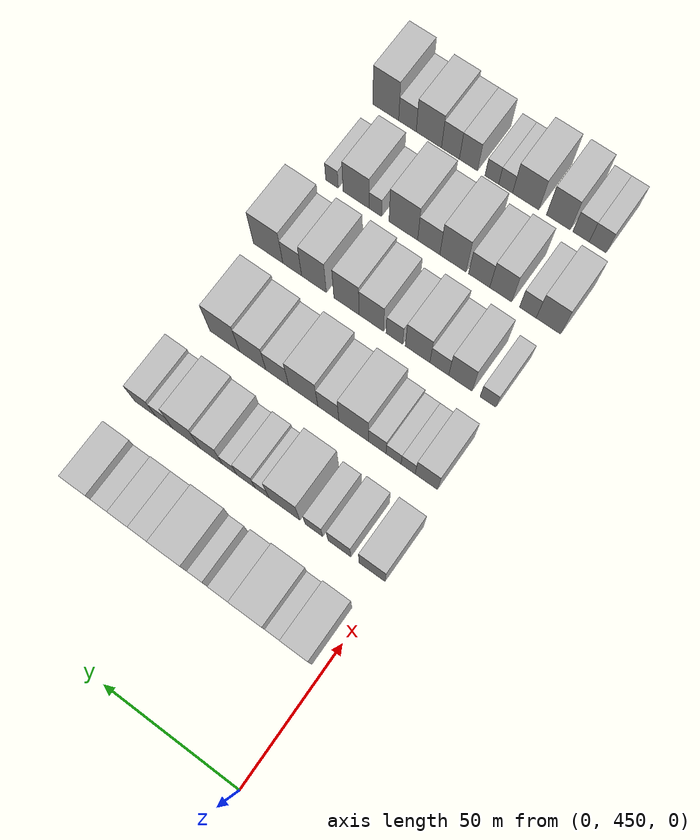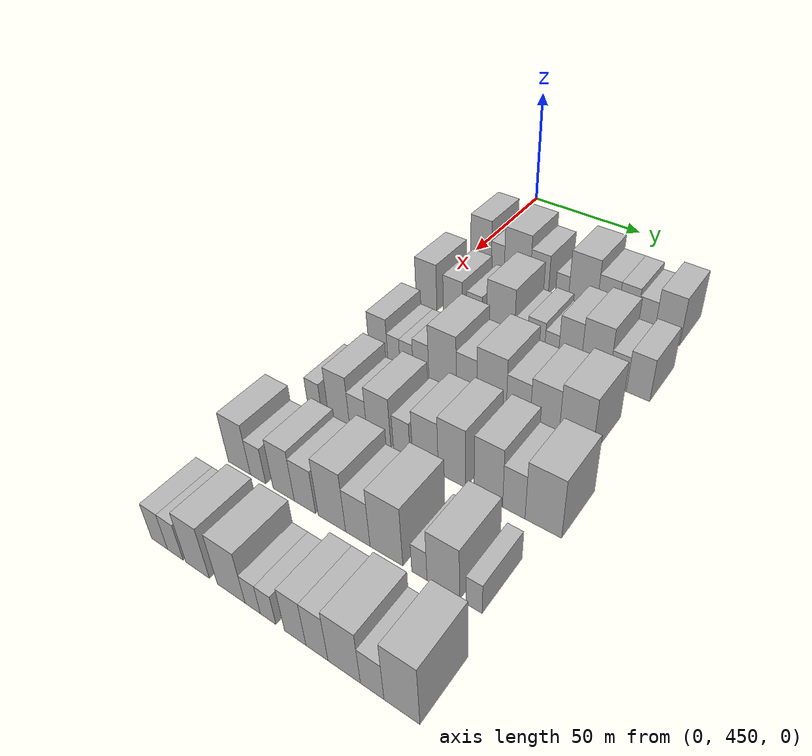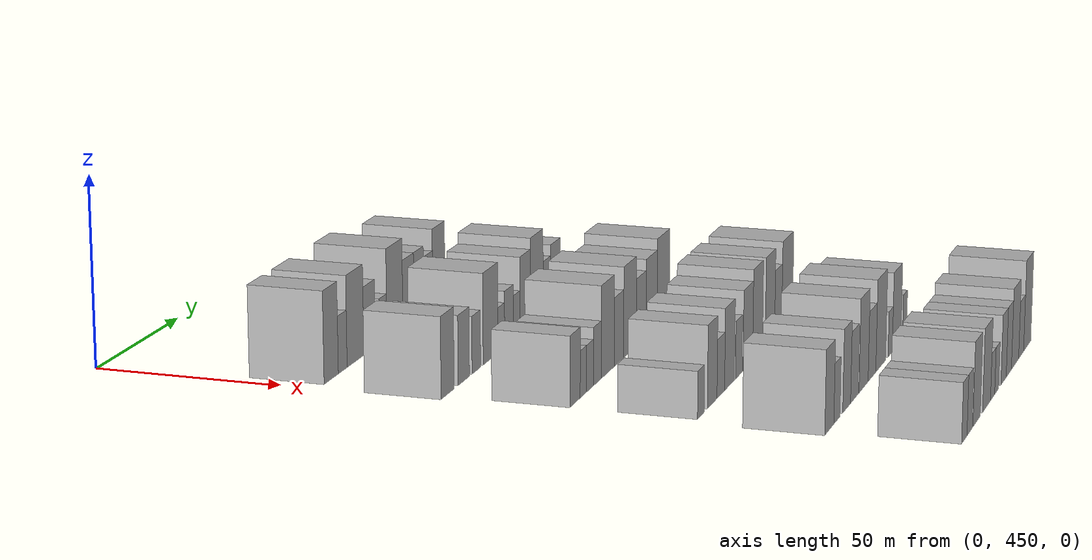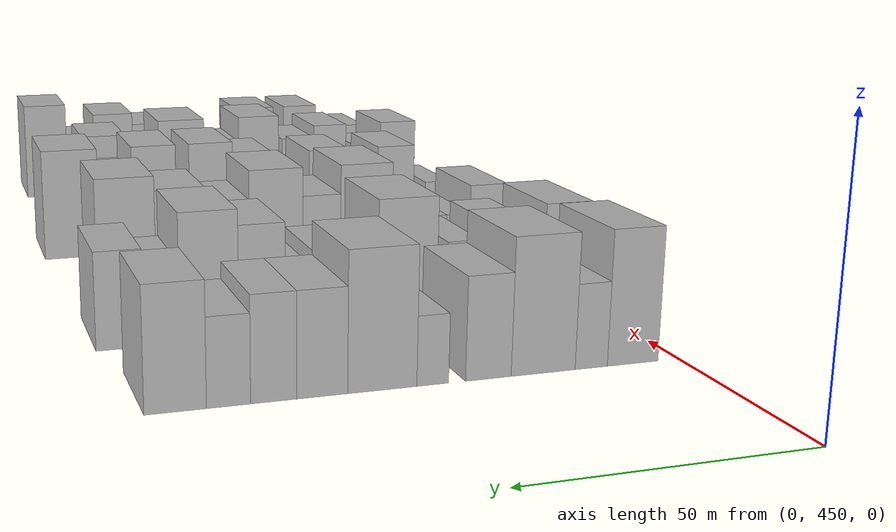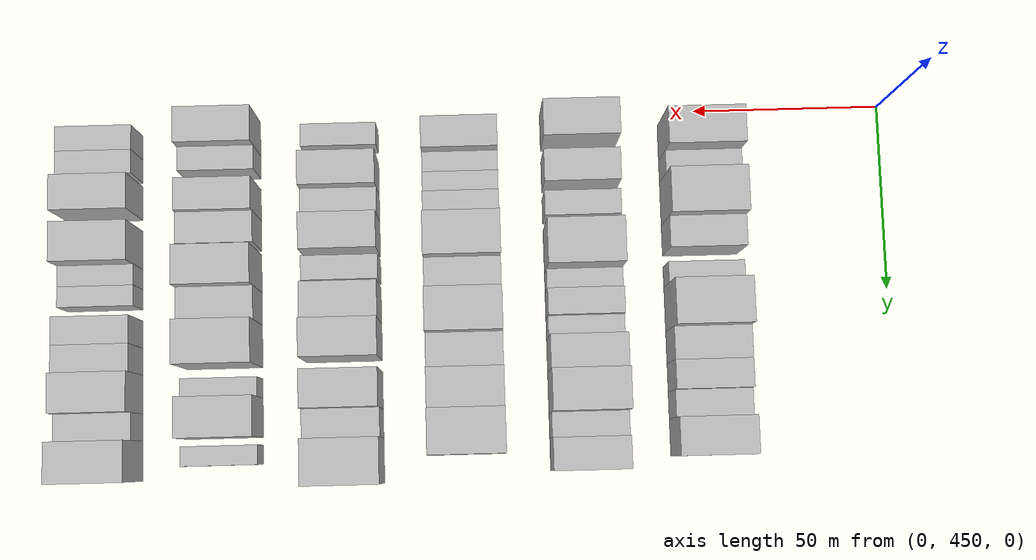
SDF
<sdf version="1.6">
 <world name="default">
  <model name="building_122">
   <static>1</static>
   <pose>50.0000 458.7116 0 0.000000 0.000000 0.000000</pose>
   <link name="link">
    <pose>0 0 12.00 0 0 0</pose>
    <collision name="collision"><geometry><box><size>20.0000 9.6775 24.0000</size></box></geometry></collision>
    <visual name="visual">
     <cast_shadows>0</cast_shadows>
     <geometry><box><size>20.0000 9.6775 24.0000</size></box></geometry>
     <material>
      <script>
       <uri>model://HANNAS_wall/materials/scripts</uri>
       <uri>model://HANNAS_wall/materials/textures</uri>
       <name>vrc/HANNAS_wall</name>
      </script>
     </material>
    </visual>
   </link>
  </model>
  <model name="building_123">
   <static>1</static>
   <pose>50.0000 466.5746 0 0.000000 0.000000 0.000000</pose>
   <link name="link">
    <pose>0 0 7.50 0 0 0</pose>
    <collision name="collision"><geometry><box><size>20.0000 6.0485 15.0000</size></box></geometry></collision>
    <visual name="visual">
     <cast_shadows>0</cast_shadows>
     <geometry><box><size>20.0000 6.0485 15.0000</size></box></geometry>
     <material>
      <script>
       <uri>model://HANNAS_wall/materials/scripts</uri>
       <uri>model://HANNAS_wall/materials/textures</uri>
       <name>vrc/HANNAS_wall</name>
      </script>
     </material>
    </visual>
   </link>
  </model>
  <model name="building_124">
   <static>1</static>
   <pose>50.0000 475.4902 0 0.000000 0.000000 0.000000</pose>
   <link name="link">
    <pose>0 0 12.00 0 0 0</pose>
    <collision name="collision"><geometry><box><size>20.0000 11.7827 24.0000</size></box></geometry></collision>
    <visual name="visual">
     <cast_shadows>0</cast_shadows>
     <geometry><box><size>20.0000 11.7827 24.0000</size></box></geometry>
     <material>
      <script>
       <uri>model://HANNAS_wall/materials/scripts</uri>
       <uri>model://HANNAS_wall/materials/textures</uri>
       <name>vrc/HANNAS_wall</name>
      </script>
     </material>
    </visual>
   </link>
  </model>
  <model name="building_125">
   <static>1</static>
   <pose>50.0000 485.4870 0 0.000000 0.000000 0.000000</pose>
   <link name="link">
    <pose>0 0 9.00 0 0 0</pose>
    <collision name="collision"><geometry><box><size>20.0000 8.2109 18.0000</size></box></geometry></collision>
    <visual name="visual">
     <cast_shadows>0</cast_shadows>
     <geometry><box><size>20.0000 8.2109 18.0000</size></box></geometry>
     <material>
      <script>
       <uri>model://HANNAS_wall/materials/scripts</uri>
       <uri>model://HANNAS_wall/materials/textures</uri>
       <name>vrc/HANNAS_wall</name>
      </script>
     </material>
    </visual>
   </link>
  </model>
  <model name="building_126">
   <static>1</static>
   <pose>50.0000 495.3786 0 0.000000 0.000000 0.000000</pose>
   <link name="link">
    <pose>0 0 6.00 0 0 0</pose>
    <collision name="collision"><geometry><box><size>20.0000 5.5721 12.0000</size></box></geometry></collision>
    <visual name="visual">
     <cast_shadows>0</cast_shadows>
     <geometry><box><size>20.0000 5.5721 12.0000</size></box></geometry>
     <material>
      <script>
       <uri>model://HANNAS_wall/materials/scripts</uri>
       <uri>model://HANNAS_wall/materials/textures</uri>
       <name>vrc/HANNAS_wall</name>
      </script>
     </material>
    </visual>
   </link>
  </model>
  <model name="building_127">
   <static>1</static>
   <pose>50.0000 504.1157 0 0.000000 0.000000 0.000000</pose>
   <link name="link">
    <pose>0 0 12.00 0 0 0</pose>
    <collision name="collision"><geometry><box><size>20.0000 11.9022 24.0000</size></box></geometry></collision>
    <visual name="visual">
     <cast_shadows>0</cast_shadows>
     <geometry><box><size>20.0000 11.9022 24.0000</size></box></geometry>
     <material>
      <script>
       <uri>model://HANNAS_wall/materials/scripts</uri>
       <uri>model://HANNAS_wall/materials/textures</uri>
       <name>vrc/HANNAS_wall</name>
      </script>
     </material>
    </visual>
   </link>
  </model>
  <model name="building_128">
   <static>1</static>
   <pose>50.0000 514.3437 0 0.000000 0.000000 0.000000</pose>
   <link name="link">
    <pose>0 0 9.00 0 0 0</pose>
    <collision name="collision"><geometry><box><size>20.0000 8.5537 18.0000</size></box></geometry></collision>
    <visual name="visual">
     <cast_shadows>0</cast_shadows>
     <geometry><box><size>20.0000 8.5537 18.0000</size></box></geometry>
     <material>
      <script>
       <uri>model://HANNAS_wall/materials/scripts</uri>
       <uri>model://HANNAS_wall/materials/textures</uri>
       <name>vrc/HANNAS_wall</name>
      </script>
     </material>
    </visual>
   </link>
  </model>
  <model name="building_129">
   <static>1</static>
   <pose>50.0000 522.3995 0 0.000000 0.000000 0.000000</pose>
   <link name="link">
    <pose>0 0 9.00 0 0 0</pose>
    <collision name="collision"><geometry><box><size>20.0000 7.5579 18.0000</size></box></geometry></collision>
    <visual name="visual">
     <cast_shadows>0</cast_shadows>
     <geometry><box><size>20.0000 7.5579 18.0000</size></box></geometry>
     <material>
      <script>
       <uri>model://HANNAS_wall/materials/scripts</uri>
       <uri>model://HANNAS_wall/materials/textures</uri>
       <name>vrc/HANNAS_wall</name>
      </script>
     </material>
    </visual>
   </link>
  </model>
  <model name="building_130">
   <static>1</static>
   <pose>50.0000 529.7280 0 0.000000 0.000000 0.000000</pose>
   <link name="link">
    <pose>0 0 7.50 0 0 0</pose>
    <collision name="collision"><geometry><box><size>20.0000 7.0993 15.0000</size></box></geometry></collision>
    <visual name="visual">
     <cast_shadows>0</cast_shadows>
     <geometry><box><size>20.0000 7.0993 15.0000</size></box></geometry>
     <material>
      <script>
       <uri>model://HANNAS_wall/materials/scripts</uri>
       <uri>model://HANNAS_wall/materials/textures</uri>
       <name>vrc/HANNAS_wall</name>
      </script>
     </material>
    </visual>
   </link>
  </model>
  <model name="building_131">
   <static>1</static>
   <pose>50.0000 538.2230 0 0.000000 0.000000 0.000000</pose>
   <link name="link">
    <pose>0 0 10.50 0 0 0</pose>
    <collision name="collision"><geometry><box><size>20.0000 9.8908 21.0000</size></box></geometry></collision>
    <visual name="visual">
     <cast_shadows>0</cast_shadows>
     <geometry><box><size>20.0000 9.8908 21.0000</size></box></geometry>
     <material>
      <script>
       <uri>model://HANNAS_wall/materials/scripts</uri>
       <uri>model://HANNAS_wall/materials/textures</uri>
       <name>vrc/HANNAS_wall</name>
      </script>
     </material>
    </visual>
   </link>
  </model>
  <model name="building_247">
   <static>1</static>
   <pose>82.0000 455.1402 0 0.000000 0.000000 0.000000</pose>
   <link name="link">
    <pose>0 0 10.50 0 0 0</pose>
    <collision name="collision"><geometry><box><size>20.0000 9.5806 21.0000</size></box></geometry></collision>
    <visual name="visual">
     <cast_shadows>0</cast_shadows>
     <geometry><box><size>20.0000 9.5806 21.0000</size></box></geometry>
     <material>
      <script>
       <uri>model://HANNAS_wall/materials/scripts</uri>
       <uri>model://HANNAS_wall/materials/textures</uri>
       <name>vrc/HANNAS_wall</name>
      </script>
     </material>
    </visual>
   </link>
  </model>
  <model name="building_248">
   <static>1</static>
   <pose>82.0000 467.1610 0 0.000000 0.000000 0.000000</pose>
   <link name="link">
    <pose>0 0 9.00 0 0 0</pose>
    <collision name="collision"><geometry><box><size>20.0000 8.4611 18.0000</size></box></geometry></collision>
    <visual name="visual">
     <cast_shadows>0</cast_shadows>
     <geometry><box><size>20.0000 8.4611 18.0000</size></box></geometry>
     <material>
      <script>
       <uri>model://HANNAS_wall/materials/scripts</uri>
       <uri>model://HANNAS_wall/materials/textures</uri>
       <name>vrc/HANNAS_wall</name>
      </script>
     </material>
    </visual>
   </link>
  </model>
  <model name="building_249">
   <static>1</static>
   <pose>82.0000 476.6665 0 0.000000 0.000000 0.000000</pose>
   <link name="link">
    <pose>0 0 7.50 0 0 0</pose>
    <collision name="collision"><geometry><box><size>20.0000 6.5498 15.0000</size></box></geometry></collision>
    <visual name="visual">
     <cast_shadows>0</cast_shadows>
     <geometry><box><size>20.0000 6.5498 15.0000</size></box></geometry>
     <material>
      <script>
       <uri>model://HANNAS_wall/materials/scripts</uri>
       <uri>model://HANNAS_wall/materials/textures</uri>
       <name>vrc/HANNAS_wall</name>
      </script>
     </material>
    </visual>
   </link>
  </model>
  <model name="building_250">
   <static>1</static>
   <pose>82.0000 487.8062 0 0.000000 0.000000 0.000000</pose>
   <link name="link">
    <pose>0 0 12.00 0 0 0</pose>
    <collision name="collision"><geometry><box><size>20.0000 11.7296 24.0000</size></box></geometry></collision>
    <visual name="visual">
     <cast_shadows>0</cast_shadows>
     <geometry><box><size>20.0000 11.7296 24.0000</size></box></geometry>
     <material>
      <script>
       <uri>model://HANNAS_wall/materials/scripts</uri>
       <uri>model://HANNAS_wall/materials/textures</uri>
       <name>vrc/HANNAS_wall</name>
      </script>
     </material>
    </visual>
   </link>
  </model>
  <model name="building_251">
   <static>1</static>
   <pose>82.0000 496.3352 0 0.000000 0.000000 0.000000</pose>
   <link name="link">
    <pose>0 0 6.00 0 0 0</pose>
    <collision name="collision"><geometry><box><size>20.0000 5.3283 12.0000</size></box></geometry></collision>
    <visual name="visual">
     <cast_shadows>0</cast_shadows>
     <geometry><box><size>20.0000 5.3283 12.0000</size></box></geometry>
     <material>
      <script>
       <uri>model://HANNAS_wall/materials/scripts</uri>
       <uri>model://HANNAS_wall/materials/textures</uri>
       <name>vrc/HANNAS_wall</name>
      </script>
     </material>
    </visual>
   </link>
  </model>
  <model name="building_252">
   <static>1</static>
   <pose>82.0000 502.4978 0 0.000000 0.000000 0.000000</pose>
   <link name="link">
    <pose>0 0 7.50 0 0 0</pose>
    <collision name="collision"><geometry><box><size>20.0000 6.9969 15.0000</size></box></geometry></collision>
    <visual name="visual">
     <cast_shadows>0</cast_shadows>
     <geometry><box><size>20.0000 6.9969 15.0000</size></box></geometry>
     <material>
      <script>
       <uri>model://HANNAS_wall/materials/scripts</uri>
       <uri>model://HANNAS_wall/materials/textures</uri>
       <name>vrc/HANNAS_wall</name>
      </script>
     </material>
    </visual>
   </link>
  </model>
  <model name="building_253">
   <static>1</static>
   <pose>82.0000 508.7325 0 0.000000 0.000000 0.000000</pose>
   <link name="link">
    <pose>0 0 6.00 0 0 0</pose>
    <collision name="collision"><geometry><box><size>20.0000 5.4725 12.0000</size></box></geometry></collision>
    <visual name="visual">
     <cast_shadows>0</cast_shadows>
     <geometry><box><size>20.0000 5.4725 12.0000</size></box></geometry>
     <material>
      <script>
       <uri>model://HANNAS_wall/materials/scripts</uri>
       <uri>model://HANNAS_wall/materials/textures</uri>
       <name>vrc/HANNAS_wall</name>
      </script>
     </material>
    </visual>
   </link>
  </model>
  <model name="building_254">
   <static>1</static>
   <pose>82.0000 515.8555 0 0.000000 0.000000 0.000000</pose>
   <link name="link">
    <pose>0 0 10.50 0 0 0</pose>
    <collision name="collision"><geometry><box><size>20.0000 8.7735 21.0000</size></box></geometry></collision>
    <visual name="visual">
     <cast_shadows>0</cast_shadows>
     <geometry><box><size>20.0000 8.7735 21.0000</size></box></geometry>
     <material>
      <script>
       <uri>model://HANNAS_wall/materials/scripts</uri>
       <uri>model://HANNAS_wall/materials/textures</uri>
       <name>vrc/HANNAS_wall</name>
      </script>
     </material>
    </visual>
   </link>
  </model>
  <model name="building_255">
   <static>1</static>
   <pose>82.0000 525.6602 0 0.000000 0.000000 0.000000</pose>
   <link name="link">
    <pose>0 0 12.00 0 0 0</pose>
    <collision name="collision"><geometry><box><size>20.0000 10.8359 24.0000</size></box></geometry></collision>
    <visual name="visual">
     <cast_shadows>0</cast_shadows>
     <geometry><box><size>20.0000 10.8359 24.0000</size></box></geometry>
     <material>
      <script>
       <uri>model://HANNAS_wall/materials/scripts</uri>
       <uri>model://HANNAS_wall/materials/textures</uri>
       <name>vrc/HANNAS_wall</name>
      </script>
     </material>
    </visual>
   </link>
  </model>
  <model name="building_256">
   <static>1</static>
   <pose>82.0000 534.3363 0 0.000000 0.000000 0.000000</pose>
   <link name="link">
    <pose>0 0 7.50 0 0 0</pose>
    <collision name="collision"><geometry><box><size>20.0000 6.5164 15.0000</size></box></geometry></collision>
    <visual name="visual">
     <cast_shadows>0</cast_shadows>
     <geometry><box><size>20.0000 6.5164 15.0000</size></box></geometry>
     <material>
      <script>
       <uri>model://HANNAS_wall/materials/scripts</uri>
       <uri>model://HANNAS_wall/materials/textures</uri>
       <name>vrc/HANNAS_wall</name>
      </script>
     </material>
    </visual>
   </link>
  </model>
  <model name="building_257">
   <static>1</static>
   <pose>82.0000 541.8346 0 0.000000 0.000000 0.000000</pose>
   <link name="link">
    <pose>0 0 9.00 0 0 0</pose>
    <collision name="collision"><geometry><box><size>20.0000 8.4802 18.0000</size></box></geometry></collision>
    <visual name="visual">
     <cast_shadows>0</cast_shadows>
     <geometry><box><size>20.0000 8.4802 18.0000</size></box></geometry>
     <material>
      <script>
       <uri>model://HANNAS_wall/materials/scripts</uri>
       <uri>model://HANNAS_wall/materials/textures</uri>
       <name>vrc/HANNAS_wall</name>
      </script>
     </material>
    </visual>
   </link>
  </model>
  <model name="building_373">
   <static>1</static>
   <pose>114.0000 457.5440 0 0.000000 0.000000 0.000000</pose>
   <link name="link">
    <pose>0 0 9.00 0 0 0</pose>
    <collision name="collision"><geometry><box><size>20.0000 8.3002 18.0000</size></box></geometry></collision>
    <visual name="visual">
     <cast_shadows>0</cast_shadows>
     <geometry><box><size>20.0000 8.3002 18.0000</size></box></geometry>
     <material>
      <script>
       <uri>model://HANNAS_wall/materials/scripts</uri>
       <uri>model://HANNAS_wall/materials/textures</uri>
       <name>vrc/HANNAS_wall</name>
      </script>
     </material>
    </visual>
   </link>
  </model>
  <model name="building_374">
   <static>1</static>
   <pose>114.0000 464.3492 0 0.000000 0.000000 0.000000</pose>
   <link name="link">
    <pose>0 0 6.00 0 0 0</pose>
    <collision name="collision"><geometry><box><size>20.0000 5.3103 12.0000</size></box></geometry></collision>
    <visual name="visual">
     <cast_shadows>0</cast_shadows>
     <geometry><box><size>20.0000 5.3103 12.0000</size></box></geometry>
     <material>
      <script>
       <uri>model://HANNAS_wall/materials/scripts</uri>
       <uri>model://HANNAS_wall/materials/textures</uri>
       <name>vrc/HANNAS_wall</name>
      </script>
     </material>
    </visual>
   </link>
  </model>
  <model name="building_375">
   <static>1</static>
   <pose>114.0000 469.8369 0 0.000000 0.000000 0.000000</pose>
   <link name="link">
    <pose>0 0 6.00 0 0 0</pose>
    <collision name="collision"><geometry><box><size>20.0000 5.6651 12.0000</size></box></geometry></collision>
    <visual name="visual">
     <cast_shadows>0</cast_shadows>
     <geometry><box><size>20.0000 5.6651 12.0000</size></box></geometry>
     <material>
      <script>
       <uri>model://HANNAS_wall/materials/scripts</uri>
       <uri>model://HANNAS_wall/materials/textures</uri>
       <name>vrc/HANNAS_wall</name>
      </script>
     </material>
    </visual>
   </link>
  </model>
  <model name="building_376">
   <static>1</static>
   <pose>114.0000 475.9889 0 0.000000 0.000000 0.000000</pose>
   <link name="link">
    <pose>0 0 7.50 0 0 0</pose>
    <collision name="collision"><geometry><box><size>20.0000 6.6389 15.0000</size></box></geometry></collision>
    <visual name="visual">
     <cast_shadows>0</cast_shadows>
     <geometry><box><size>20.0000 6.6389 15.0000</size></box></geometry>
     <material>
      <script>
       <uri>model://HANNAS_wall/materials/scripts</uri>
       <uri>model://HANNAS_wall/materials/textures</uri>
       <name>vrc/HANNAS_wall</name>
      </script>
     </material>
    </visual>
   </link>
  </model>
  <model name="building_377">
   <static>1</static>
   <pose>114.0000 484.9532 0 0.000000 0.000000 0.000000</pose>
   <link name="link">
    <pose>0 0 12.00 0 0 0</pose>
    <collision name="collision"><geometry><box><size>20.0000 11.2897 24.0000</size></box></geometry></collision>
    <visual name="visual">
     <cast_shadows>0</cast_shadows>
     <geometry><box><size>20.0000 11.2897 24.0000</size></box></geometry>
     <material>
      <script>
       <uri>model://HANNAS_wall/materials/scripts</uri>
       <uri>model://HANNAS_wall/materials/textures</uri>
       <name>vrc/HANNAS_wall</name>
      </script>
     </material>
    </visual>
   </link>
  </model>
  <model name="building_378">
   <static>1</static>
   <pose>114.0000 494.6662 0 0.000000 0.000000 0.000000</pose>
   <link name="link">
    <pose>0 0 9.00 0 0 0</pose>
    <collision name="collision"><geometry><box><size>20.0000 8.1363 18.0000</size></box></geometry></collision>
    <visual name="visual">
     <cast_shadows>0</cast_shadows>
     <geometry><box><size>20.0000 8.1363 18.0000</size></box></geometry>
     <material>
      <script>
       <uri>model://HANNAS_wall/materials/scripts</uri>
       <uri>model://HANNAS_wall/materials/textures</uri>
       <name>vrc/HANNAS_wall</name>
      </script>
     </material>
    </visual>
   </link>
  </model>
  <model name="building_379">
   <static>1</static>
   <pose>114.0000 504.4098 0 0.000000 0.000000 0.000000</pose>
   <link name="link">
    <pose>0 0 12.00 0 0 0</pose>
    <collision name="collision"><geometry><box><size>20.0000 11.3510 24.0000</size></box></geometry></collision>
    <visual name="visual">
     <cast_shadows>0</cast_shadows>
     <geometry><box><size>20.0000 11.3510 24.0000</size></box></geometry>
     <material>
      <script>
       <uri>model://HANNAS_wall/materials/scripts</uri>
       <uri>model://HANNAS_wall/materials/textures</uri>
       <name>vrc/HANNAS_wall</name>
      </script>
     </material>
    </visual>
   </link>
  </model>
  <model name="building_380">
   <static>1</static>
   <pose>114.0000 514.5449 0 0.000000 0.000000 0.000000</pose>
   <link name="link">
    <pose>0 0 9.00 0 0 0</pose>
    <collision name="collision"><geometry><box><size>20.0000 8.9192 18.0000</size></box></geometry></collision>
    <visual name="visual">
     <cast_shadows>0</cast_shadows>
     <geometry><box><size>20.0000 8.9192 18.0000</size></box></geometry>
     <material>
      <script>
       <uri>model://HANNAS_wall/materials/scripts</uri>
       <uri>model://HANNAS_wall/materials/textures</uri>
       <name>vrc/HANNAS_wall</name>
      </script>
     </material>
    </visual>
   </link>
  </model>
  <model name="building_381">
   <static>1</static>
   <pose>114.0000 524.2181 0 0.000000 0.000000 0.000000</pose>
   <link name="link">
    <pose>0 0 10.50 0 0 0</pose>
    <collision name="collision"><geometry><box><size>20.0000 10.4271 21.0000</size></box></geometry></collision>
    <visual name="visual">
     <cast_shadows>0</cast_shadows>
     <geometry><box><size>20.0000 10.4271 21.0000</size></box></geometry>
     <material>
      <script>
       <uri>model://HANNAS_wall/materials/scripts</uri>
       <uri>model://HANNAS_wall/materials/textures</uri>
       <name>vrc/HANNAS_wall</name>
      </script>
     </material>
    </visual>
   </link>
  </model>
  <model name="building_382">
   <static>1</static>
   <pose>114.0000 535.3532 0 0.000000 0.000000 0.000000</pose>
   <link name="link">
    <pose>0 0 12.00 0 0 0</pose>
    <collision name="collision"><geometry><box><size>20.0000 11.8431 24.0000</size></box></geometry></collision>
    <visual name="visual">
     <cast_shadows>0</cast_shadows>
     <geometry><box><size>20.0000 11.8431 24.0000</size></box></geometry>
     <material>
      <script>
       <uri>model://HANNAS_wall/materials/scripts</uri>
       <uri>model://HANNAS_wall/materials/textures</uri>
       <name>vrc/HANNAS_wall</name>
      </script>
     </material>
    </visual>
   </link>
  </model>
  <model name="building_484">
   <static>1</static>
   <pose>146.0000 456.3148 0 0.000000 0.000000 0.000000</pose>
   <link name="link">
    <pose>0 0 6.00 0 0 0</pose>
    <collision name="collision"><geometry><box><size>20.0000 5.9835 12.0000</size></box></geometry></collision>
    <visual name="visual">
     <cast_shadows>0</cast_shadows>
     <geometry><box><size>20.0000 5.9835 12.0000</size></box></geometry>
     <material>
      <script>
       <uri>model://HANNAS_wall/materials/scripts</uri>
       <uri>model://HANNAS_wall/materials/textures</uri>
       <name>vrc/HANNAS_wall</name>
      </script>
     </material>
    </visual>
   </link>
  </model>
  <model name="building_485">
   <static>1</static>
   <pose>146.0000 466.7645 0 0.000000 0.000000 0.000000</pose>
   <link name="link">
    <pose>0 0 10.50 0 0 0</pose>
    <collision name="collision"><geometry><box><size>20.0000 8.9157 21.0000</size></box></geometry></collision>
    <visual name="visual">
     <cast_shadows>0</cast_shadows>
     <geometry><box><size>20.0000 8.9157 21.0000</size></box></geometry>
     <material>
      <script>
       <uri>model://HANNAS_wall/materials/scripts</uri>
       <uri>model://HANNAS_wall/materials/textures</uri>
       <name>vrc/HANNAS_wall</name>
      </script>
     </material>
    </visual>
   </link>
  </model>
  <model name="building_486">
   <static>1</static>
   <pose>146.0000 474.8107 0 0.000000 0.000000 0.000000</pose>
   <link name="link">
    <pose>0 0 7.50 0 0 0</pose>
    <collision name="collision"><geometry><box><size>20.0000 7.1767 15.0000</size></box></geometry></collision>
    <visual name="visual">
     <cast_shadows>0</cast_shadows>
     <geometry><box><size>20.0000 7.1767 15.0000</size></box></geometry>
     <material>
      <script>
       <uri>model://HANNAS_wall/materials/scripts</uri>
       <uri>model://HANNAS_wall/materials/textures</uri>
       <name>vrc/HANNAS_wall</name>
      </script>
     </material>
    </visual>
   </link>
  </model>
  <model name="building_487">
   <static>1</static>
   <pose>146.0000 483.1421 0 0.000000 0.000000 0.000000</pose>
   <link name="link">
    <pose>0 0 10.50 0 0 0</pose>
    <collision name="collision"><geometry><box><size>20.0000 9.4862 21.0000</size></box></geometry></collision>
    <visual name="visual">
     <cast_shadows>0</cast_shadows>
     <geometry><box><size>20.0000 9.4862 21.0000</size></box></geometry>
     <material>
      <script>
       <uri>model://HANNAS_wall/materials/scripts</uri>
       <uri>model://HANNAS_wall/materials/textures</uri>
       <name>vrc/HANNAS_wall</name>
      </script>
     </material>
    </visual>
   </link>
  </model>
  <model name="building_488">
   <static>1</static>
   <pose>146.0000 492.1023 0 0.000000 0.000000 0.000000</pose>
   <link name="link">
    <pose>0 0 7.50 0 0 0</pose>
    <collision name="collision"><geometry><box><size>20.0000 6.4341 15.0000</size></box></geometry></collision>
    <visual name="visual">
     <cast_shadows>0</cast_shadows>
     <geometry><box><size>20.0000 6.4341 15.0000</size></box></geometry>
     <material>
      <script>
       <uri>model://HANNAS_wall/materials/scripts</uri>
       <uri>model://HANNAS_wall/materials/textures</uri>
       <name>vrc/HANNAS_wall</name>
      </script>
     </material>
    </visual>
   </link>
  </model>
  <model name="building_489">
   <static>1</static>
   <pose>146.0000 501.1051 0 0.000000 0.000000 0.000000</pose>
   <link name="link">
    <pose>0 0 10.50 0 0 0</pose>
    <collision name="collision"><geometry><box><size>20.0000 9.5714 21.0000</size></box></geometry></collision>
    <visual name="visual">
     <cast_shadows>0</cast_shadows>
     <geometry><box><size>20.0000 9.5714 21.0000</size></box></geometry>
     <material>
      <script>
       <uri>model://HANNAS_wall/materials/scripts</uri>
       <uri>model://HANNAS_wall/materials/textures</uri>
       <name>vrc/HANNAS_wall</name>
      </script>
     </material>
    </visual>
   </link>
  </model>
  <model name="building_490">
   <static>1</static>
   <pose>146.0000 510.8556 0 0.000000 0.000000 0.000000</pose>
   <link name="link">
    <pose>0 0 12.00 0 0 0</pose>
    <collision name="collision"><geometry><box><size>20.0000 9.9298 24.0000</size></box></geometry></collision>
    <visual name="visual">
     <cast_shadows>0</cast_shadows>
     <geometry><box><size>20.0000 9.9298 24.0000</size></box></geometry>
     <material>
      <script>
       <uri>model://HANNAS_wall/materials/scripts</uri>
       <uri>model://HANNAS_wall/materials/textures</uri>
       <name>vrc/HANNAS_wall</name>
      </script>
     </material>
    </visual>
   </link>
  </model>
  <model name="building_491">
   <static>1</static>
   <pose>146.0000 523.7611 0 0.000000 0.000000 0.000000</pose>
   <link name="link">
    <pose>0 0 12.00 0 0 0</pose>
    <collision name="collision"><geometry><box><size>20.0000 9.8812 24.0000</size></box></geometry></collision>
    <visual name="visual">
     <cast_shadows>0</cast_shadows>
     <geometry><box><size>20.0000 9.8812 24.0000</size></box></geometry>
     <material>
      <script>
       <uri>model://HANNAS_wall/materials/scripts</uri>
       <uri>model://HANNAS_wall/materials/textures</uri>
       <name>vrc/HANNAS_wall</name>
      </script>
     </material>
    </visual>
   </link>
  </model>
  <model name="building_492">
   <static>1</static>
   <pose>146.0000 532.4820 0 0.000000 0.000000 0.000000</pose>
   <link name="link">
    <pose>0 0 9.00 0 0 0</pose>
    <collision name="collision"><geometry><box><size>20.0000 7.5605 18.0000</size></box></geometry></collision>
    <visual name="visual">
     <cast_shadows>0</cast_shadows>
     <geometry><box><size>20.0000 7.5605 18.0000</size></box></geometry>
     <material>
      <script>
       <uri>model://HANNAS_wall/materials/scripts</uri>
       <uri>model://HANNAS_wall/materials/textures</uri>
       <name>vrc/HANNAS_wall</name>
      </script>
     </material>
    </visual>
   </link>
  </model>
  <model name="building_493">
   <static>1</static>
   <pose>146.0000 542.2276 0 0.000000 0.000000 0.000000</pose>
   <link name="link">
    <pose>0 0 12.00 0 0 0</pose>
    <collision name="collision"><geometry><box><size>20.0000 11.9307 24.0000</size></box></geometry></collision>
    <visual name="visual">
     <cast_shadows>0</cast_shadows>
     <geometry><box><size>20.0000 11.9307 24.0000</size></box></geometry>
     <material>
      <script>
       <uri>model://HANNAS_wall/materials/scripts</uri>
       <uri>model://HANNAS_wall/materials/textures</uri>
       <name>vrc/HANNAS_wall</name>
      </script>
     </material>
    </visual>
   </link>
  </model>
  <model name="building_615">
   <static>1</static>
   <pose>178.0000 454.5836 0 0.000000 0.000000 0.000000</pose>
   <link name="link">
    <pose>0 0 10.50 0 0 0</pose>
    <collision name="collision"><geometry><box><size>20.0000 9.3194 21.0000</size></box></geometry></collision>
    <visual name="visual">
     <cast_shadows>0</cast_shadows>
     <geometry><box><size>20.0000 9.3194 21.0000</size></box></geometry>
     <material>
      <script>
       <uri>model://HANNAS_wall/materials/scripts</uri>
       <uri>model://HANNAS_wall/materials/textures</uri>
       <name>vrc/HANNAS_wall</name>
      </script>
     </material>
    </visual>
   </link>
  </model>
  <model name="building_616">
   <static>1</static>
   <pose>178.0000 462.4302 0 0.000000 0.000000 0.000000</pose>
   <link name="link">
    <pose>0 0 7.50 0 0 0</pose>
    <collision name="collision"><geometry><box><size>20.0000 6.3737 15.0000</size></box></geometry></collision>
    <visual name="visual">
     <cast_shadows>0</cast_shadows>
     <geometry><box><size>20.0000 6.3737 15.0000</size></box></geometry>
     <material>
      <script>
       <uri>model://HANNAS_wall/materials/scripts</uri>
       <uri>model://HANNAS_wall/materials/textures</uri>
       <name>vrc/HANNAS_wall</name>
      </script>
     </material>
    </visual>
   </link>
  </model>
  <model name="building_617">
   <static>1</static>
   <pose>178.0000 472.8506 0 0.000000 0.000000 0.000000</pose>
   <link name="link">
    <pose>0 0 10.50 0 0 0</pose>
    <collision name="collision"><geometry><box><size>20.0000 8.4672 21.0000</size></box></geometry></collision>
    <visual name="visual">
     <cast_shadows>0</cast_shadows>
     <geometry><box><size>20.0000 8.4672 21.0000</size></box></geometry>
     <material>
      <script>
       <uri>model://HANNAS_wall/materials/scripts</uri>
       <uri>model://HANNAS_wall/materials/textures</uri>
       <name>vrc/HANNAS_wall</name>
      </script>
     </material>
    </visual>
   </link>
  </model>
  <model name="building_618">
   <static>1</static>
   <pose>178.0000 481.2145 0 0.000000 0.000000 0.000000</pose>
   <link name="link">
    <pose>0 0 9.00 0 0 0</pose>
    <collision name="collision"><geometry><box><size>20.0000 8.2605 18.0000</size></box></geometry></collision>
    <visual name="visual">
     <cast_shadows>0</cast_shadows>
     <geometry><box><size>20.0000 8.2605 18.0000</size></box></geometry>
     <material>
      <script>
       <uri>model://HANNAS_wall/materials/scripts</uri>
       <uri>model://HANNAS_wall/materials/textures</uri>
       <name>vrc/HANNAS_wall</name>
      </script>
     </material>
    </visual>
   </link>
  </model>
  <model name="building_619">
   <static>1</static>
   <pose>178.0000 491.4700 0 0.000000 0.000000 0.000000</pose>
   <link name="link">
    <pose>0 0 12.00 0 0 0</pose>
    <collision name="collision"><geometry><box><size>20.0000 10.2505 24.0000</size></box></geometry></collision>
    <visual name="visual">
     <cast_shadows>0</cast_shadows>
     <geometry><box><size>20.0000 10.2505 24.0000</size></box></geometry>
     <material>
      <script>
       <uri>model://HANNAS_wall/materials/scripts</uri>
       <uri>model://HANNAS_wall/materials/textures</uri>
       <name>vrc/HANNAS_wall</name>
      </script>
     </material>
    </visual>
   </link>
  </model>
  <model name="building_620">
   <static>1</static>
   <pose>178.0000 500.9912 0 0.000000 0.000000 0.000000</pose>
   <link name="link">
    <pose>0 0 9.00 0 0 0</pose>
    <collision name="collision"><geometry><box><size>20.0000 8.7919 18.0000</size></box></geometry></collision>
    <visual name="visual">
     <cast_shadows>0</cast_shadows>
     <geometry><box><size>20.0000 8.7919 18.0000</size></box></geometry>
     <material>
      <script>
       <uri>model://HANNAS_wall/materials/scripts</uri>
       <uri>model://HANNAS_wall/materials/textures</uri>
       <name>vrc/HANNAS_wall</name>
      </script>
     </material>
    </visual>
   </link>
  </model>
  <model name="building_621">
   <static>1</static>
   <pose>178.0000 511.0917 0 0.000000 0.000000 0.000000</pose>
   <link name="link">
    <pose>0 0 12.00 0 0 0</pose>
    <collision name="collision"><geometry><box><size>20.0000 11.4091 24.0000</size></box></geometry></collision>
    <visual name="visual">
     <cast_shadows>0</cast_shadows>
     <geometry><box><size>20.0000 11.4091 24.0000</size></box></geometry>
     <material>
      <script>
       <uri>model://HANNAS_wall/materials/scripts</uri>
       <uri>model://HANNAS_wall/materials/textures</uri>
       <name>vrc/HANNAS_wall</name>
      </script>
     </material>
    </visual>
   </link>
  </model>
  <model name="building_622">
   <static>1</static>
   <pose>178.0000 522.3388 0 0.000000 0.000000 0.000000</pose>
   <link name="link">
    <pose>0 0 6.00 0 0 0</pose>
    <collision name="collision"><geometry><box><size>20.0000 5.0850 12.0000</size></box></geometry></collision>
    <visual name="visual">
     <cast_shadows>0</cast_shadows>
     <geometry><box><size>20.0000 5.0850 12.0000</size></box></geometry>
     <material>
      <script>
       <uri>model://HANNAS_wall/materials/scripts</uri>
       <uri>model://HANNAS_wall/materials/textures</uri>
       <name>vrc/HANNAS_wall</name>
      </script>
     </material>
    </visual>
   </link>
  </model>
  <model name="building_623">
   <static>1</static>
   <pose>178.0000 530.1175 0 0.000000 0.000000 0.000000</pose>
   <link name="link">
    <pose>0 0 10.50 0 0 0</pose>
    <collision name="collision"><geometry><box><size>20.0000 10.4723 21.0000</size></box></geometry></collision>
    <visual name="visual">
     <cast_shadows>0</cast_shadows>
     <geometry><box><size>20.0000 10.4723 21.0000</size></box></geometry>
     <material>
      <script>
       <uri>model://HANNAS_wall/materials/scripts</uri>
       <uri>model://HANNAS_wall/materials/textures</uri>
       <name>vrc/HANNAS_wall</name>
      </script>
     </material>
    </visual>
   </link>
  </model>
  <model name="building_624">
   <static>1</static>
   <pose>178.0000 539.9093 0 0.000000 0.000000 0.000000</pose>
   <link name="link">
    <pose>0 0 6.00 0 0 0</pose>
    <collision name="collision"><geometry><box><size>20.0000 5.1114 12.0000</size></box></geometry></collision>
    <visual name="visual">
     <cast_shadows>0</cast_shadows>
     <geometry><box><size>20.0000 5.1114 12.0000</size></box></geometry>
     <material>
      <script>
       <uri>model://HANNAS_wall/materials/scripts</uri>
       <uri>model://HANNAS_wall/materials/textures</uri>
       <name>vrc/HANNAS_wall</name>
      </script>
     </material>
    </visual>
   </link>
  </model>
  <model name="building_732">
   <static>1</static>
   <pose>210.0000 456.2778 0 0.000000 0.000000 0.000000</pose>
   <link name="link">
    <pose>0 0 7.50 0 0 0</pose>
    <collision name="collision"><geometry><box><size>20.0000 6.5801 15.0000</size></box></geometry></collision>
    <visual name="visual">
     <cast_shadows>0</cast_shadows>
     <geometry><box><size>20.0000 6.5801 15.0000</size></box></geometry>
     <material>
      <script>
       <uri>model://HANNAS_wall/materials/scripts</uri>
       <uri>model://HANNAS_wall/materials/textures</uri>
       <name>vrc/HANNAS_wall</name>
      </script>
     </material>
    </visual>
   </link>
  </model>
  <model name="building_733">
   <static>1</static>
   <pose>210.0000 462.7233 0 0.000000 0.000000 0.000000</pose>
   <link name="link">
    <pose>0 0 7.50 0 0 0</pose>
    <collision name="collision"><geometry><box><size>20.0000 6.3111 15.0000</size></box></geometry></collision>
    <visual name="visual">
     <cast_shadows>0</cast_shadows>
     <geometry><box><size>20.0000 6.3111 15.0000</size></box></geometry>
     <material>
      <script>
       <uri>model://HANNAS_wall/materials/scripts</uri>
       <uri>model://HANNAS_wall/materials/textures</uri>
       <name>vrc/HANNAS_wall</name>
      </script>
     </material>
    </visual>
   </link>
  </model>
  <model name="building_734">
   <static>1</static>
   <pose>210.0000 471.5089 0 0.000000 0.000000 0.000000</pose>
   <link name="link">
    <pose>0 0 10.50 0 0 0</pose>
    <collision name="collision"><geometry><box><size>20.0000 9.2601 21.0000</size></box></geometry></collision>
    <visual name="visual">
     <cast_shadows>0</cast_shadows>
     <geometry><box><size>20.0000 9.2601 21.0000</size></box></geometry>
     <material>
      <script>
       <uri>model://HANNAS_wall/materials/scripts</uri>
       <uri>model://HANNAS_wall/materials/textures</uri>
       <name>vrc/HANNAS_wall</name>
      </script>
     </material>
    </visual>
   </link>
  </model>
  <model name="building_735">
   <static>1</static>
   <pose>210.0000 484.3167 0 0.000000 0.000000 0.000000</pose>
   <link name="link">
    <pose>0 0 10.50 0 0 0</pose>
    <collision name="collision"><geometry><box><size>20.0000 10.3555 21.0000</size></box></geometry></collision>
    <visual name="visual">
     <cast_shadows>0</cast_shadows>
     <geometry><box><size>20.0000 10.3555 21.0000</size></box></geometry>
     <material>
      <script>
       <uri>model://HANNAS_wall/materials/scripts</uri>
       <uri>model://HANNAS_wall/materials/textures</uri>
       <name>vrc/HANNAS_wall</name>
      </script>
     </material>
    </visual>
   </link>
  </model>
  <model name="building_736">
   <static>1</static>
   <pose>210.0000 492.2464 0 0.000000 0.000000 0.000000</pose>
   <link name="link">
    <pose>0 0 6.00 0 0 0</pose>
    <collision name="collision"><geometry><box><size>20.0000 5.5039 12.0000</size></box></geometry></collision>
    <visual name="visual">
     <cast_shadows>0</cast_shadows>
     <geometry><box><size>20.0000 5.5039 12.0000</size></box></geometry>
     <material>
      <script>
       <uri>model://HANNAS_wall/materials/scripts</uri>
       <uri>model://HANNAS_wall/materials/textures</uri>
       <name>vrc/HANNAS_wall</name>
      </script>
     </material>
    </visual>
   </link>
  </model>
  <model name="building_737">
   <static>1</static>
   <pose>210.0000 497.7158 0 0.000000 0.000000 0.000000</pose>
   <link name="link">
    <pose>0 0 6.00 0 0 0</pose>
    <collision name="collision"><geometry><box><size>20.0000 5.4348 12.0000</size></box></geometry></collision>
    <visual name="visual">
     <cast_shadows>0</cast_shadows>
     <geometry><box><size>20.0000 5.4348 12.0000</size></box></geometry>
     <material>
      <script>
       <uri>model://HANNAS_wall/materials/scripts</uri>
       <uri>model://HANNAS_wall/materials/textures</uri>
       <name>vrc/HANNAS_wall</name>
      </script>
     </material>
    </visual>
   </link>
  </model>
  <model name="building_738">
   <static>1</static>
   <pose>210.0000 507.0778 0 0.000000 0.000000 0.000000</pose>
   <link name="link">
    <pose>0 0 9.00 0 0 0</pose>
    <collision name="collision"><geometry><box><size>20.0000 7.2892 18.0000</size></box></geometry></collision>
    <visual name="visual">
     <cast_shadows>0</cast_shadows>
     <geometry><box><size>20.0000 7.2892 18.0000</size></box></geometry>
     <material>
      <script>
       <uri>model://HANNAS_wall/materials/scripts</uri>
       <uri>model://HANNAS_wall/materials/textures</uri>
       <name>vrc/HANNAS_wall</name>
      </script>
     </material>
    </visual>
   </link>
  </model>
  <model name="building_739">
   <static>1</static>
   <pose>210.0000 514.3466 0 0.000000 0.000000 0.000000</pose>
   <link name="link">
    <pose>0 0 9.00 0 0 0</pose>
    <collision name="collision"><geometry><box><size>20.0000 7.2484 18.0000</size></box></geometry></collision>
    <visual name="visual">
     <cast_shadows>0</cast_shadows>
     <geometry><box><size>20.0000 7.2484 18.0000</size></box></geometry>
     <material>
      <script>
       <uri>model://HANNAS_wall/materials/scripts</uri>
       <uri>model://HANNAS_wall/materials/textures</uri>
       <name>vrc/HANNAS_wall</name>
      </script>
     </material>
    </visual>
   </link>
  </model>
  <model name="building_740">
   <static>1</static>
   <pose>210.0000 523.1195 0 0.000000 0.000000 0.000000</pose>
   <link name="link">
    <pose>0 0 10.50 0 0 0</pose>
    <collision name="collision"><geometry><box><size>20.0000 10.2974 21.0000</size></box></geometry></collision>
    <visual name="visual">
     <cast_shadows>0</cast_shadows>
     <geometry><box><size>20.0000 10.2974 21.0000</size></box></geometry>
     <material>
      <script>
       <uri>model://HANNAS_wall/materials/scripts</uri>
       <uri>model://HANNAS_wall/materials/textures</uri>
       <name>vrc/HANNAS_wall</name>
      </script>
     </material>
    </visual>
   </link>
  </model>
  <model name="building_741">
   <static>1</static>
   <pose>210.0000 531.8606 0 0.000000 0.000000 0.000000</pose>
   <link name="link">
    <pose>0 0 7.50 0 0 0</pose>
    <collision name="collision"><geometry><box><size>20.0000 7.1849 15.0000</size></box></geometry></collision>
    <visual name="visual">
     <cast_shadows>0</cast_shadows>
     <geometry><box><size>20.0000 7.1849 15.0000</size></box></geometry>
     <material>
      <script>
       <uri>model://HANNAS_wall/materials/scripts</uri>
       <uri>model://HANNAS_wall/materials/textures</uri>
       <name>vrc/HANNAS_wall</name>
      </script>
     </material>
    </visual>
   </link>
  </model>
  <model name="building_742">
   <static>1</static>
   <pose>210.0000 540.7453 0 0.000000 0.000000 0.000000</pose>
   <link name="link">
    <pose>0 0 12.00 0 0 0</pose>
    <collision name="collision"><geometry><box><size>20.0000 10.5844 24.0000</size></box></geometry></collision>
    <visual name="visual">
     <cast_shadows>0</cast_shadows>
     <geometry><box><size>20.0000 10.5844 24.0000</size></box></geometry>
     <material>
      <script>
       <uri>model://HANNAS_wall/materials/scripts</uri>
       <uri>model://HANNAS_wall/materials/textures</uri>
       <name>vrc/HANNAS_wall</name>
      </script>
     </material>
    </visual>
   </link>
  </model>
 </world>
</sdf>
